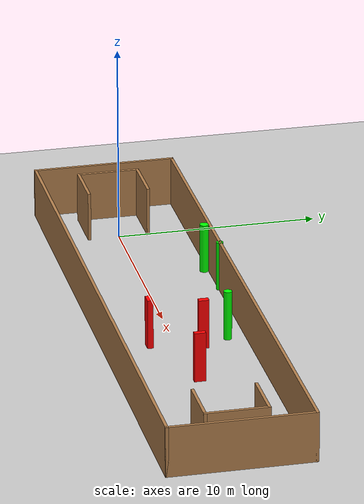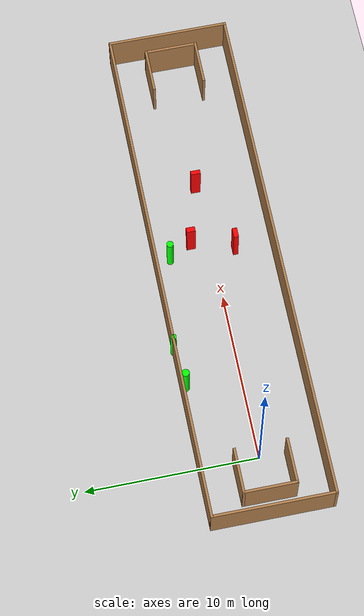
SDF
<sdf version="1.7">
 <world name="default">
  <light name="sun" type="directional">
   <pose>0 0 10 0 -0 0</pose>
   <diffuse>0.8 0.8 0.8 1</diffuse>
   <specular>0.2 0.2 0.2 1</specular>
   <attenuation>
    <range>1000</range>
    <constant>0.9</constant>
    <linear>0.01</linear>
    <quadratic>0.001</quadratic>
   </attenuation>
   <direction>-0.5 0.1 -0.9</direction>
   <spot><inner_angle>0</inner_angle><outer_angle>0</outer_angle><falloff>0</falloff></spot>
  </light>
  <model name="ground_plane">
   <static>1</static>
   <link name="link">
    <collision name="collision">
     <geometry><plane><normal>0 0 1</normal><size>100 100</size></plane></geometry>
     <surface>
      <contact><collide_bitmask>65535</collide_bitmask></contact>
      <friction><ode><mu>100</mu><mu2>50</mu2></ode></friction>
     </surface>
    </collision>
    <visual name="visual">
     <cast_shadows>0</cast_shadows>
     <geometry><plane><normal>0 0 1</normal><size>100 100</size></plane></geometry>
     <material>
      <script><uri>file://media/materials/scripts/gazebo.material</uri><name>Gazebo/Grey</name></script>
     </material>
    </visual>
   </link>
  </model>
  <gravity>0 0 -9.8</gravity>
  <magnetic_field>6e-06 2.3e-05 -4.2e-05</magnetic_field>
  <atmosphere type="adiabatic"/>
  <physics type="ode">
   <max_step_size>0.001</max_step_size>
   <real_time_factor>1</real_time_factor>
   <real_time_update_rate>1000</real_time_update_rate>
  </physics>
  <scene><ambient>0.4 0.4 0.4 1</ambient><background>0.7 0.7 0.7 1</background><shadows>1</shadows></scene>
  <spherical_coordinates>
   <surface_model>EARTH_WGS84</surface_model>
   <latitude_deg>0</latitude_deg>
   <longitude_deg>0</longitude_deg>
   <elevation>0</elevation>
   <heading_deg>0</heading_deg>
  </spherical_coordinates>
  <model name="my_base_walls">
   <link name="Wall_0">
    <collision name="Wall_0_Collision">
     <geometry><box><size>7.15 0.15 2.5</size></box></geometry>
     <pose>0 0 1.25 0 -0 0</pose>
    </collision>
    <visual name="Wall_0_Visual">
     <pose>0 0 1.25 0 -0 0</pose>
     <geometry><box><size>7.15 0.15 2.5</size></box></geometry>
     <material>
      <script><uri>file://media/materials/scripts/gazebo.material</uri><name>Gazebo/Wood</name></script>
      <ambient>1 1 1 1</ambient>
     </material>
     <meta><layer>0</layer></meta>
    </visual>
    <pose>-15 0 0 0 -0 1.5708</pose>
   </link>
   <link name="Wall_10">
    <collision name="Wall_10_Collision">
     <geometry><box><size>2.65 0.15 2.5</size></box></geometry>
     <pose>0 0 1.25 0 -0 0</pose>
    </collision>
    <visual name="Wall_10_Visual">
     <pose>0 0 1.25 0 -0 0</pose>
     <geometry><box><size>2.65 0.15 2.5</size></box></geometry>
     <material>
      <script><uri>file://media/materials/scripts/gazebo.material</uri><name>Gazebo/Wood</name></script>
      <ambient>1 1 1 1</ambient>
     </material>
     <meta><layer>0</layer></meta>
    </visual>
    <pose>-12.75 -1.5 0 0 -0 0</pose>
   </link>
   <link name="Wall_12">
    <collision name="Wall_12_Collision">
     <geometry><box><size>2.65 0.15 2.5</size></box></geometry>
     <pose>0 0 1.25 0 -0 0</pose>
    </collision>
    <visual name="Wall_12_Visual">
     <pose>0 0 1.25 0 -0 0</pose>
     <geometry><box><size>2.65 0.15 2.5</size></box></geometry>
     <material>
      <script><uri>file://media/materials/scripts/gazebo.material</uri><name>Gazebo/Wood</name></script>
      <ambient>1 1 1 1</ambient>
     </material>
     <meta><layer>0</layer></meta>
    </visual>
    <pose>-12.75 1.5 0 0 -0 0</pose>
   </link>
   <link name="Wall_14">
    <collision name="Wall_14_Collision">
     <geometry><box><size>3.15 0.15 2.5</size></box></geometry>
     <pose>0 0 1.25 0 -0 0</pose>
    </collision>
    <visual name="Wall_14_Visual">
     <pose>0 0 1.25 0 -0 0</pose>
     <geometry><box><size>3.15 0.15 2.5</size></box></geometry>
     <material>
      <script><uri>file://media/materials/scripts/gazebo.material</uri><name>Gazebo/Wood</name></script>
      <ambient>1 1 1 1</ambient>
     </material>
     <meta><layer>0</layer></meta>
    </visual>
    <pose>14 0 0 0 -0 -1.5708</pose>
   </link>
   <link name="Wall_15">
    <collision name="Wall_15_Collision">
     <geometry><box><size>2.65 0.15 2.5</size></box></geometry>
     <pose>0 0 1.25 0 -0 0</pose>
    </collision>
    <visual name="Wall_15_Visual">
     <pose>0 0 1.25 0 -0 0</pose>
     <geometry><box><size>2.65 0.15 2.5</size></box></geometry>
     <material>
      <script><uri>file://media/materials/scripts/gazebo.material</uri><name>Gazebo/Wood</name></script>
      <ambient>1 1 1 1</ambient>
     </material>
     <meta><layer>0</layer></meta>
    </visual>
    <pose>12.75 -1.5 0 0 -0 3.14159</pose>
   </link>
   <link name="Wall_17">
    <collision name="Wall_17_Collision">
     <geometry><box><size>2.65 0.15 2.5</size></box></geometry>
     <pose>0 0 1.25 0 -0 0</pose>
    </collision>
    <visual name="Wall_17_Visual">
     <pose>0 0 1.25 0 -0 0</pose>
     <geometry><box><size>2.65 0.15 2.5</size></box></geometry>
     <material>
      <script><uri>file://media/materials/scripts/gazebo.material</uri><name>Gazebo/Wood</name></script>
      <ambient>1 1 1 1</ambient>
     </material>
     <meta><layer>0</layer></meta>
    </visual>
    <pose>12.75 1.5 0 0 -0 3.14159</pose>
   </link>
   <link name="Wall_2">
    <collision name="Wall_2_Collision">
     <geometry><box><size>30.15 0.15 2.5</size></box></geometry>
     <pose>0 0 1.25 0 -0 0</pose>
    </collision>
    <visual name="Wall_2_Visual">
     <pose>0 0 1.25 0 -0 0</pose>
     <geometry><box><size>30.15 0.15 2.5</size></box></geometry>
     <material>
      <script><uri>file://media/materials/scripts/gazebo.material</uri><name>Gazebo/Wood</name></script>
      <ambient>1 1 1 1</ambient>
     </material>
     <meta><layer>0</layer></meta>
    </visual>
    <pose>-0 -3.5 0 0 -0 0</pose>
   </link>
   <link name="Wall_4">
    <collision name="Wall_4_Collision">
     <geometry><box><size>30.15 0.15 2.5</size></box></geometry>
     <pose>0 0 1.25 0 -0 0</pose>
    </collision>
    <visual name="Wall_4_Visual">
     <pose>0 0 1.25 0 -0 0</pose>
     <geometry><box><size>30.15 0.15 2.5</size></box></geometry>
     <material>
      <script><uri>file://media/materials/scripts/gazebo.material</uri><name>Gazebo/Wood</name></script>
      <ambient>1 1 1 1</ambient>
     </material>
     <meta><layer>0</layer></meta>
    </visual>
    <pose>-0 3.5 0 0 -0 0</pose>
   </link>
   <link name="Wall_6">
    <collision name="Wall_6_Collision">
     <geometry><box><size>7.15 0.15 2.5</size></box></geometry>
     <pose>0 0 1.25 0 -0 0</pose>
    </collision>
    <visual name="Wall_6_Visual">
     <pose>0 0 1.25 0 -0 0</pose>
     <geometry><box><size>7.15 0.15 2.5</size></box></geometry>
     <material>
      <script><uri>file://media/materials/scripts/gazebo.material</uri><name>Gazebo/Wood</name></script>
      <ambient>1 1 1 1</ambient>
     </material>
     <meta><layer>0</layer></meta>
    </visual>
    <pose>15 0 0 0 -0 -1.5708</pose>
   </link>
   <link name="Wall_9">
    <collision name="Wall_9_Collision">
     <geometry><box><size>3.15 0.15 2.5</size></box></geometry>
     <pose>0 0 1.25 0 -0 0</pose>
    </collision>
    <visual name="Wall_9_Visual">
     <pose>0 0 1.25 0 -0 0</pose>
     <geometry><box><size>3.15 0.15 2.5</size></box></geometry>
     <material>
      <script><uri>file://media/materials/scripts/gazebo.material</uri><name>Gazebo/Wood</name></script>
      <ambient>1 1 1 1</ambient>
     </material>
     <meta><layer>0</layer></meta>
    </visual>
    <pose>-14 0 0 0 -0 -1.5708</pose>
   </link>
   <static>1</static>
   <pose>11.5 0 0 0 -0 0</pose>
  </model>
  <model name="cylinder1">
   <static>1</static>
   <link name="link">
    <inertial>
     <mass>1</mass>
     <inertia><ixx>0.5</ixx><ixy>0</ixy><ixz>0</ixz><iyy>0.5</iyy><iyz>0</iyz><izz>1</izz></inertia>
    </inertial>
    <collision name="collision">
     <geometry><cylinder><radius>0.19736089855625039</radius><length>2.5</length></cylinder></geometry>
    </collision>
    <visual name="visual">
     <geometry><cylinder><radius>0.19736089855625039</radius><length>2.5</length></cylinder></geometry>
     <material>
      <ambient>0 1 0 1</ambient>
      <diffuse>0 1 0 1</diffuse>
      <specular>0.1 0.1 0.1 1</specular>
      <emissive>0 0 0 0</emissive>
     </material>
    </visual>
   </link>
   <pose>12.85082750008843 2.5572278592168836 1.25 0 0 0</pose>
  </model>
  <model name="cylinder2">
   <static>1</static>
   <link name="link">
    <inertial>
     <mass>1</mass>
     <inertia><ixx>0.5</ixx><ixy>0</ixy><ixz>0</ixz><iyy>0.5</iyy><iyz>0</iyz><izz>1</izz></inertia>
    </inertial>
    <collision name="collision">
     <geometry><cylinder><radius>0.16824109296436585</radius><length>2.5</length></cylinder></geometry>
    </collision>
    <visual name="visual">
     <geometry><cylinder><radius>0.16824109296436585</radius><length>2.5</length></cylinder></geometry>
     <material>
      <ambient>0 1 0 1</ambient>
      <diffuse>0 1 0 1</diffuse>
      <specular>0.1 0.1 0.1 1</specular>
      <emissive>0 0 0 0</emissive>
     </material>
    </visual>
   </link>
   <pose>7.202940909646687 3.486339940391761 1.25 0 0 0</pose>
  </model>
  <model name="cylinder3">
   <static>1</static>
   <link name="link">
    <inertial>
     <mass>1</mass>
     <inertia><ixx>0.5</ixx><ixy>0</ixy><ixz>0</ixz><iyy>0.5</iyy><iyz>0</iyz><izz>1</izz></inertia>
    </inertial>
    <collision name="collision">
     <geometry><cylinder><radius>0.22080098665752834</radius><length>2.5</length></cylinder></geometry>
    </collision>
    <visual name="visual">
     <geometry><cylinder><radius>0.22080098665752834</radius><length>2.5</length></cylinder></geometry>
     <material>
      <ambient>0 1 0 1</ambient>
      <diffuse>0 1 0 1</diffuse>
      <specular>0.1 0.1 0.1 1</specular>
      <emissive>0 0 0 0</emissive>
     </material>
    </visual>
   </link>
   <pose>4.941949737073076 3.239416910337499 1.25 0 0 0</pose>
  </model>
  <model name="box1">
   <static>1</static>
   <link name="link">
    <inertial>
     <mass>1</mass>
     <inertia><ixx>0.083</ixx><ixy>0</ixy><ixz>0</ixz><iyy>0.083</iyy><iyz>0</iyz><izz>0.083</izz></inertia>
    </inertial>
    <collision name="collision">
     <geometry><box><size>0.241949394274751 0.5556029947704777 2.5</size></box></geometry>
    </collision>
    <visual name="visual">
     <geometry><box><size>0.241949394274751 0.5556029947704777 2.5</size></box></geometry>
     <material>
      <ambient>1 0 0 1</ambient>
      <diffuse>1 0 0 1</diffuse>
      <specular>0.1 0.1 0.1 1</specular>
      <emissive>0 0 0 0</emissive>
     </material>
    </visual>
    <sensor name="my_contact" type="contact">
     <contact><collision>box_collision</collision><topic>__default_topic__</topic></contact>
    </sensor>
   </link>
   <pose>17.060836531618023 0.205214901669033 1.25 0 0 0</pose>
  </model>
  <model name="box2">
   <static>1</static>
   <link name="link">
    <inertial>
     <mass>1</mass>
     <inertia><ixx>0.083</ixx><ixy>0</ixy><ixz>0</ixz><iyy>0.083</iyy><iyz>0</iyz><izz>0.083</izz></inertia>
    </inertial>
    <collision name="collision">
     <geometry><box><size>0.2919458055318018 0.5082123797566152 2.5</size></box></geometry>
    </collision>
    <visual name="visual">
     <geometry><box><size>0.2919458055318018 0.5082123797566152 2.5</size></box></geometry>
     <material>
      <ambient>1 0 0 1</ambient>
      <diffuse>1 0 0 1</diffuse>
      <specular>0.1 0.1 0.1 1</specular>
      <emissive>0 0 0 0</emissive>
     </material>
    </visual>
    <sensor name="my_contact" type="contact">
     <contact><collision>box_collision</collision><topic>__default_topic__</topic></contact>
    </sensor>
   </link>
   <pose>13.522866810748654 1.2063884963249834 1.25 0 0 0</pose>
  </model>
  <model name="box3">
   <static>1</static>
   <link name="link">
    <inertial>
     <mass>1</mass>
     <inertia><ixx>0.083</ixx><ixy>0</ixy><ixz>0</ixz><iyy>0.083</iyy><iyz>0</iyz><izz>0.083</izz></inertia>
    </inertial>
    <collision name="collision">
     <geometry><box><size>0.5793176059035186 0.2848953318322792 2.5</size></box></geometry>
    </collision>
    <visual name="visual">
     <geometry><box><size>0.5793176059035186 0.2848953318322792 2.5</size></box></geometry>
     <material>
      <ambient>1 0 0 1</ambient>
      <diffuse>1 0 0 1</diffuse>
      <specular>0.1 0.1 0.1 1</specular>
      <emissive>0 0 0 0</emissive>
     </material>
    </visual>
    <sensor name="my_contact" type="contact">
     <contact><collision>box_collision</collision><topic>__default_topic__</topic></contact>
    </sensor>
   </link>
   <pose>12.824977889595353 -1.2801223652360063 1.25 0 0 0</pose>
  </model>
 </world>
</sdf>
